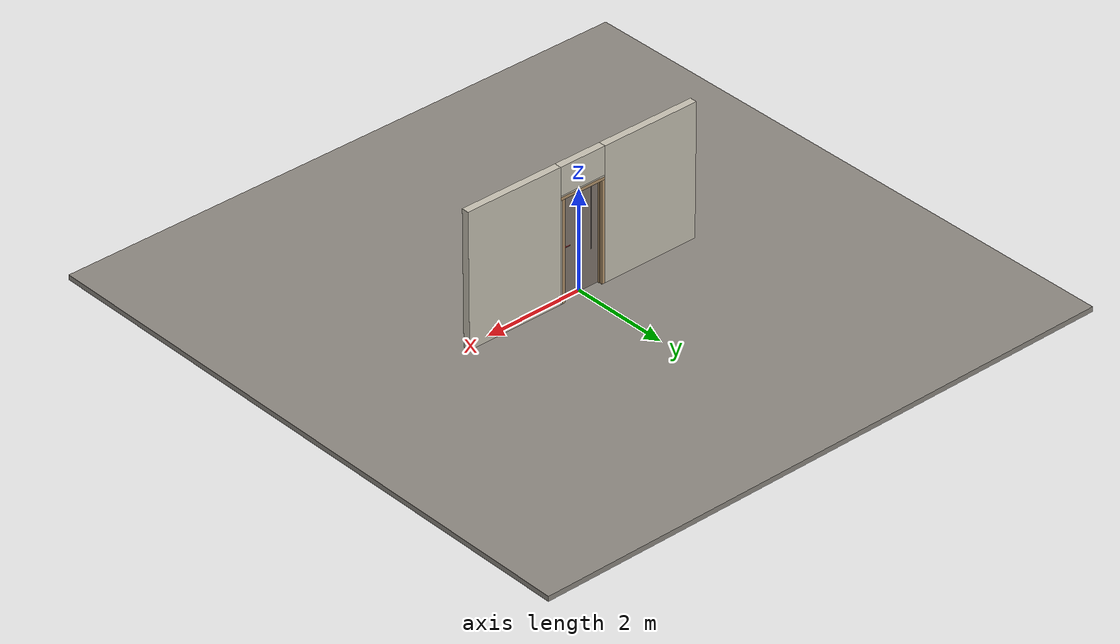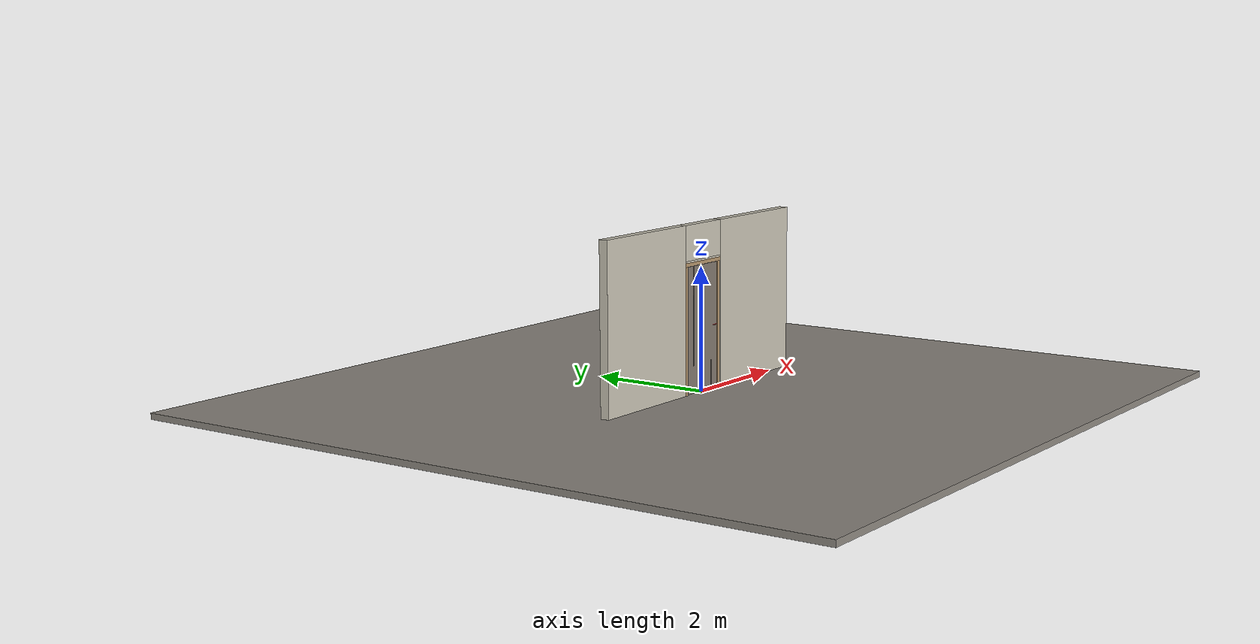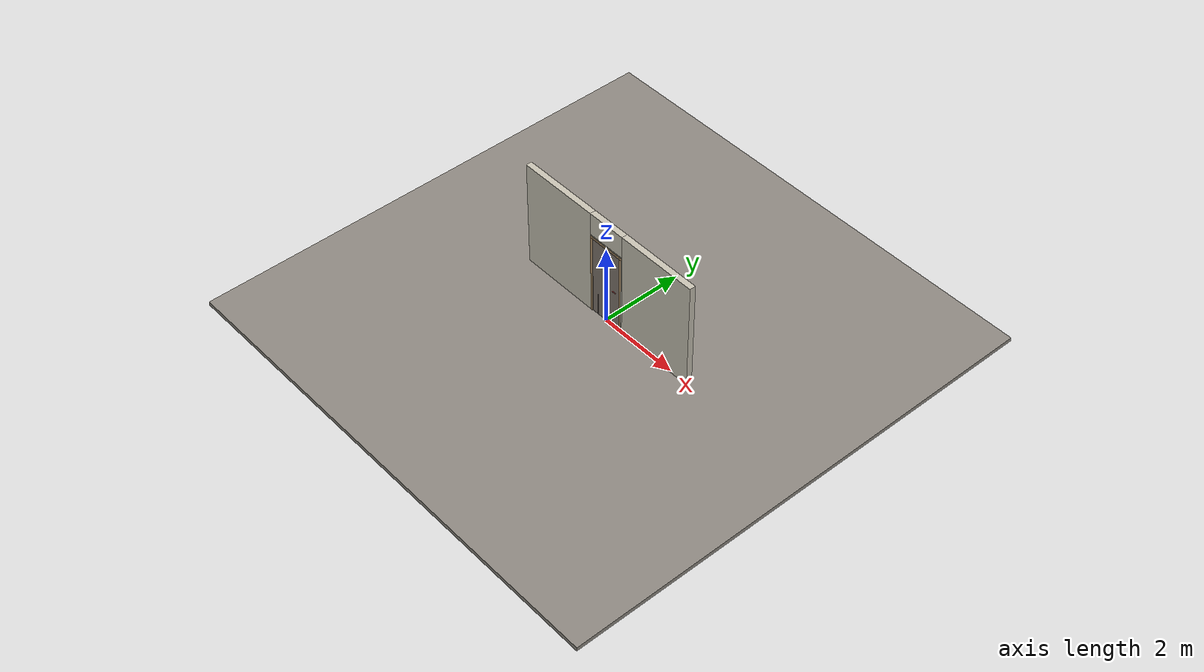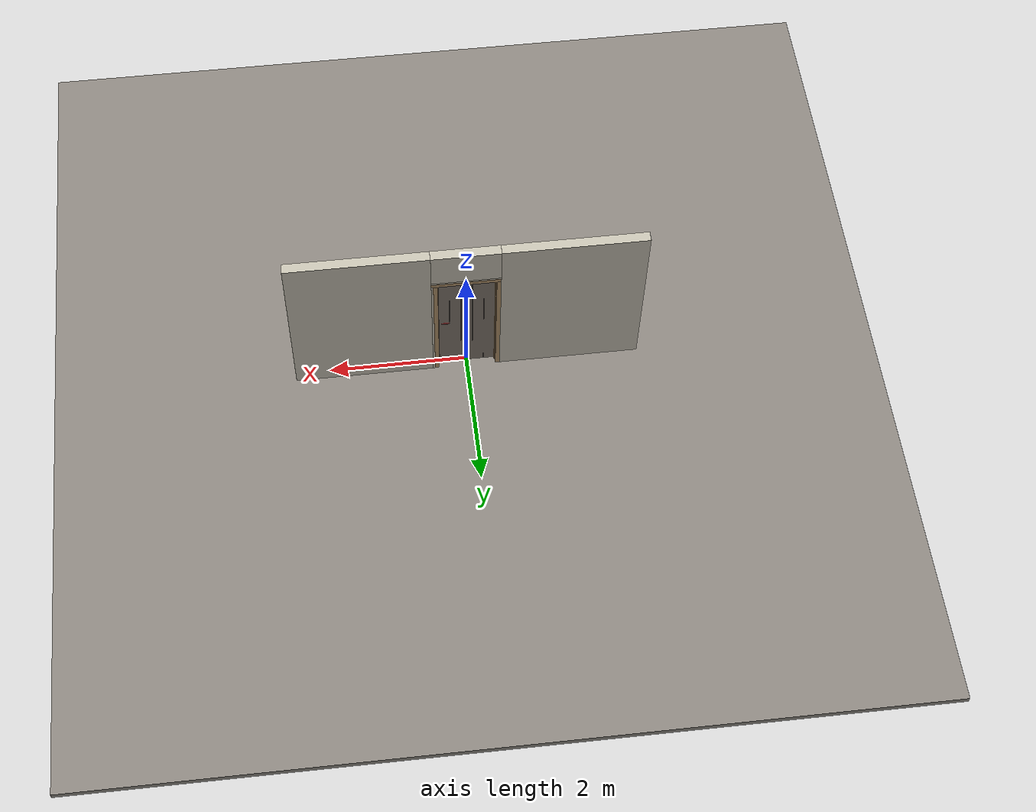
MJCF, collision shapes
<?xml version="1.0" ?>
<mujoco model="db0527_swing_single_full">
  <compiler angle="radian" meshdir="../../hardware" texturedir="../../textures" autolimits="true" inertiafromgeom="false"/>
  <option timestep="0.002" integrator="implicitfast" cone="elliptic" impratio="10" noslip_iterations="3">
    <flag multiccd="enable"/>
  </option>
  <size memory="16M"/>
  <default>
    <geom condim="4" solref="0.005 1" solimp="0.95 0.99 0.001"/>
    <joint solreflimit="0.005 1" solimplimit="0.95 0.99 0.001"/>
    <tendon solreflimit="0.005 1"/>
    <equality solref="0.002 1"/>
  </default>
  <visual>
    <headlight ambient="0.4 0.4 0.4" diffuse="0.7 0.7 0.7" specular="0.2 0.2 0.2"/>
    <quality shadowsize="4096"/>
    <map znear="0.01" zfar="60"/>
  </visual>
  <asset>
    <mesh name="hinge_e22b26c0c1" file="hinge_e22b26c0c1.obj"/>
    <mesh name="hinge_jamb_e1d088f8dc" file="hinge_jamb_e1d088f8dc.obj"/>
    <mesh name="peephole_f829311a59" file="peephole_f829311a59.obj"/>
    <mesh name="ring_cc5c941a8a" file="ring_cc5c941a8a.obj"/>
    <material name="mat_floor" rgba="0.55 0.53 0.5 1" specular="0.2" shininess="0.15" reflectance="0"/>
    <material name="mat_wall" rgba="0.78 0.76 0.7 1" specular="0.2" shininess="0.1" reflectance="0"/>
    <material name="mat_leaf" rgba="0.5 0.46 0.425 1" specular="0.2" shininess="0.15" reflectance="0"/>
    <material name="mat_leaf_brace" rgba="0.45 0.414 0.383 1" specular="0.2" shininess="0.2" reflectance="0"/>
    <material name="mat_hinge" rgba="0.45 0.3 0.22 1" specular="0.5" shininess="0.1" reflectance="0.2"/>
    <material name="mat_op_wrought_iron" rgba="0.08 0.08 0.09 1" specular="0.56" shininess="0.25" reflectance="0.24"/>
    <material name="mat_frame" rgba="0.7 0.58 0.42 1" specular="0.2" shininess="0.5" reflectance="0"/>
    <material name="mat_seal" rgba="0.1 0.1 0.1 1" specular="0.2" shininess="0.1" reflectance="0"/>
    <material name="mat_peephole" rgba="0.85 0.66 0.3 1" specular="0.8" shininess="0.75" reflectance="0.4"/>
    <texture name="skybox" type="skybox" builtin="gradient" rgb1="0.6 0.7 0.85" rgb2="0.9 0.92 0.95" width="256" height="256"/>
  </asset>
  <worldbody>
    <light name="sun" pos="1.5 -2.5 4" dir="-0.3 0.5 -0.8" directional="true" diffuse="0.8 0.8 0.8" specular="0.3 0.3 0.3" castshadow="true"/>
    <light name="fill" pos="-1.5 2.5 3" dir="0.3 -0.5 -0.7" directional="true" diffuse="0.35 0.35 0.4" castshadow="false"/>
    <camera name="robot_view" pos="0 -2.498687 1.734312" xyaxes="1 0 0 0 0.26963 0.962964" fovy="52"/>
    <camera name="far_view" pos="0 2.585687 1.734312" xyaxes="-1 0 0 0 -0.26963 0.962964" fovy="52"/>
    <camera name="iso" pos="1.932062 -2.091938 2.141063" xyaxes="0.741536 0.670913 0 -0.242917 0.268487 0.932151" fovy="46"/>
    <camera name="detail_handle" pos="0.4805 -0.854 1.32" xyaxes="0.97561 0.219512 0 -0.070934 0.315262 0.94635" fovy="38"/>
    <geom name="floor" type="box" size="6 6 0.05" pos="0 0 -0.05" material="mat_floor" group="0" contype="1" conaffinity="1" friction="0.8 0.005 0.0001" density="2400"/>
    <geom name="wall_left" type="box" size="1.01475 0.0725 1.35" pos="-1.48525 0.0435 1.35" material="mat_wall" group="0" contype="1" conaffinity="1" friction="0.6 0.005 0.0001" density="800"/>
    <geom name="wall_right" type="box" size="0.99975 0.0725 1.35" pos="1.50025 0.0435 1.35" material="mat_wall" group="0" contype="1" conaffinity="1" friction="0.6 0.005 0.0001" density="800"/>
    <geom name="wall_header" type="box" size="0.4855 0.0725 0.2825" pos="0.015 0.0435 2.4175" material="mat_wall" group="0" contype="1" conaffinity="1" friction="0.6 0.005 0.0001" density="800"/>
    <geom name="hinge_0_jamb" type="mesh" mesh="hinge_jamb_e1d088f8dc" pos="-0.4075 -0.029 0.259" material="mat_hinge" group="1" contype="0" conaffinity="0" density="7850"/>
    <geom name="hinge_1_jamb" type="mesh" mesh="hinge_jamb_e1d088f8dc" pos="-0.4075 -0.029 1.025" material="mat_hinge" group="1" contype="0" conaffinity="0" density="7850"/>
    <geom name="hinge_2_jamb" type="mesh" mesh="hinge_jamb_e1d088f8dc" pos="-0.4075 -0.029 1.861" material="mat_hinge" group="1" contype="0" conaffinity="0" density="7850"/>
    <geom name="jamb_hinge" type="box" size="0.03 0.0725 1.0225" pos="-0.4405 0.0435 1.0225" material="mat_frame" group="0" contype="1" conaffinity="1" friction="0.6 0.005 0.0001" density="750"/>
    <geom name="jamb_strike" type="box" size="0.03 0.0725 1.0225" pos="0.4405 0.0435 1.0225" material="mat_frame" group="0" contype="1" conaffinity="1" friction="0.6 0.005 0.0001" density="750"/>
    <geom name="stud_strike" type="box" size="0.015 0.0725 1.0225" pos="0.4855 0.0435 1.0225" material="mat_wall" group="0" contype="1" conaffinity="1" friction="0.6 0.005 0.0001" density="500"/>
    <geom name="jamb_head" type="box" size="0.4855 0.0725 0.03" pos="0.015 0.0435 2.075" material="mat_frame" group="0" contype="1" conaffinity="1" friction="0.6 0.005 0.0001" density="750"/>
    <geom name="head_stud" type="box" size="0.4855 0.0725 0.015" pos="0.015 0.0435 2.12" material="mat_wall" group="0" contype="1" conaffinity="1" friction="0.6 0.005 0.0001" density="500"/>
    <geom name="stop_hinge" type="box" size="0.0055 0.016 1.0225" pos="-0.405 0.0385 1.0225" material="mat_frame" group="0" contype="1" conaffinity="1" friction="0.6 0.005 0.0001" density="750"/>
    <geom name="stop_strike" type="box" size="0.0055 0.016 1.0225" pos="0.405 0.0385 1.0225" material="mat_frame" group="0" contype="1" conaffinity="1" friction="0.6 0.005 0.0001" density="750"/>
    <geom name="stop_head" type="box" size="0.4105 0.016 0.0055" pos="0 0.0385 2.0395" material="mat_frame" group="0" contype="1" conaffinity="1" friction="0.6 0.005 0.0001" density="750"/>
    <geom name="seal_hinge" type="box" size="0.004 0.002 1.0225" pos="-0.4075 0.024 1.0225" material="mat_seal" group="1" contype="0" conaffinity="0" density="1100"/>
    <geom name="seal_strike" type="box" size="0.004 0.002 1.0225" pos="0.4075 0.024 1.0225" material="mat_seal" group="1" contype="0" conaffinity="0" density="1100"/>
    <geom name="seal_head" type="box" size="0.3905 0.002 0.008" pos="0 0.024 2.033" material="mat_seal" group="1" contype="0" conaffinity="0" density="1100"/>
    <site name="approach_point" pos="0 -1.5 0" quat="1 0 0 0" size="0.05" rgba="0.2 0.9 0.2 0.5" group="4"/>
    <site name="goal_point" pos="0 1.5 0" quat="1 0 0 0" size="0.05" rgba="0.2 0.9 0.2 0.5" group="4"/>
    <site name="door_plane_center" pos="0 0 1.0225" quat="1 0 0 0" size="0.02" rgba="0.2 0.9 0.2 0.5" group="4"/>
    <body name="leaf" pos="-0.4105 0 0">
      <inertial pos="0.407109 -0.000372 1.026929" mass="36.220578" quat="0.499541 0.500773 -0.49921 0.500474" diaginertia="2.106957373 12.298683142 14.389356457"/>
      <joint name="leaf_hinge" type="hinge" axis="0 0 -1" pos="0.003 -0.029 0" limited="true" range="0 1.919862" solreflimit="0.02 1" damping="0.210326" frictionloss="33.472239" armature="0.02"/>
      <geom name="leaf_slab" type="box" size="0.4065 0.022 1.016" pos="0.4095 0 1.025" material="mat_leaf" group="0" contype="1" conaffinity="1" friction="0.45 0.005 0.0001" density="1"/>
      <geom name="leaf_plank_gap_1" type="box" size="0.002 0.023 1.006" pos="0.1656 0 1.025" material="mat_leaf_brace" group="1" contype="0" conaffinity="0" density="1"/>
      <geom name="leaf_plank_gap_2" type="box" size="0.002 0.023 1.006" pos="0.3282 0 1.025" material="mat_leaf_brace" group="1" contype="0" conaffinity="0" density="1"/>
      <geom name="leaf_plank_gap_3" type="box" size="0.002 0.023 1.006" pos="0.4908 0 1.025" material="mat_leaf_brace" group="1" contype="0" conaffinity="0" density="1"/>
      <geom name="leaf_plank_gap_4" type="box" size="0.002 0.023 1.006" pos="0.6534 0 1.025" material="mat_leaf_brace" group="1" contype="0" conaffinity="0" density="1"/>
      <geom name="hinge_0" type="mesh" mesh="hinge_e22b26c0c1" pos="0.003 -0.029 0.259" material="mat_hinge" group="1" contype="0" conaffinity="0" density="7850"/>
      <geom name="hinge_1" type="mesh" mesh="hinge_e22b26c0c1" pos="0.003 -0.029 1.025" material="mat_hinge" group="1" contype="0" conaffinity="0" density="7850"/>
      <geom name="hinge_2" type="mesh" mesh="hinge_e22b26c0c1" pos="0.003 -0.029 1.861" material="mat_hinge" group="1" contype="0" conaffinity="0" density="7850"/>
      <geom name="leaf_ring_pull_n" type="mesh" mesh="ring_cc5c941a8a" pos="0.711 -0.022 1.1" quat="0.707107 0.707107 0 0" material="mat_op_wrought_iron" group="1" contype="0" conaffinity="0" density="3000"/>
      <geom name="leaf_ring_pull_col_n" type="capsule" size="0.008 0.05" pos="0.711 -0.054 1.04" quat="0.707107 0 0.707107 0" material="mat_op_wrought_iron" group="3" contype="1" conaffinity="1" rgba="0.8 0.3 0.3 0.25" friction="0.7 0.01 0.0001" density="3000"/>
      <geom name="leaf_ring_pull_p" type="mesh" mesh="ring_cc5c941a8a" pos="0.711 0.022 1.1" quat="-0.707107 0.707107 0 0" material="mat_op_wrought_iron" group="1" contype="0" conaffinity="0" density="3000"/>
      <geom name="leaf_ring_pull_col_p" type="capsule" size="0.008 0.05" pos="0.711 0.054 1.04" quat="0.707107 0 0.707107 0" material="mat_op_wrought_iron" group="3" contype="1" conaffinity="1" rgba="0.8 0.3 0.3 0.25" friction="0.7 0.01 0.0001" density="3000"/>
      <geom name="peephole" type="mesh" mesh="peephole_f829311a59" pos="0.4095 -0.022 1.509" quat="0.707107 0.707107 0 0" material="mat_peephole" group="2" contype="0" conaffinity="0" density="8500"/>
      <site name="leaf_ring_pull_grip_n" pos="0.711 -0.054 1.04" quat="1 0 0 0" size="0.012" rgba="0.2 0.9 0.2 0.5" group="4"/>
      <site name="leaf_ring_pull_grip_p" pos="0.711 0.054 1.04" quat="1 0 0 0" size="0.012" rgba="0.2 0.9 0.2 0.5" group="4"/>
      <site name="leaf_edge_mid" pos="0.816 0 1.016" quat="1 0 0 0" size="0.02" rgba="0.2 0.9 0.2 0.5" group="4"/>
    </body>
  </worldbody>
  <sensor>
    <jointpos name="leaf_hinge_pos" joint="leaf_hinge"/>
    <jointvel name="leaf_hinge_vel" joint="leaf_hinge"/>
  </sensor>
</mujoco>
